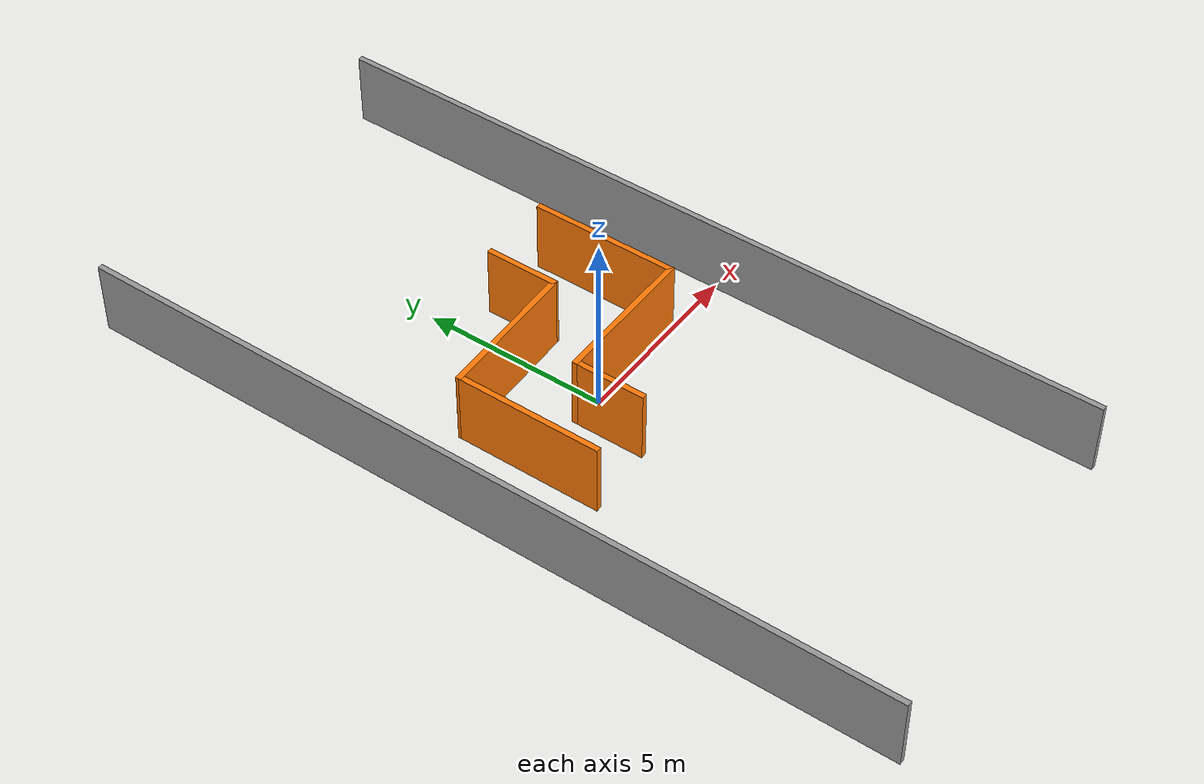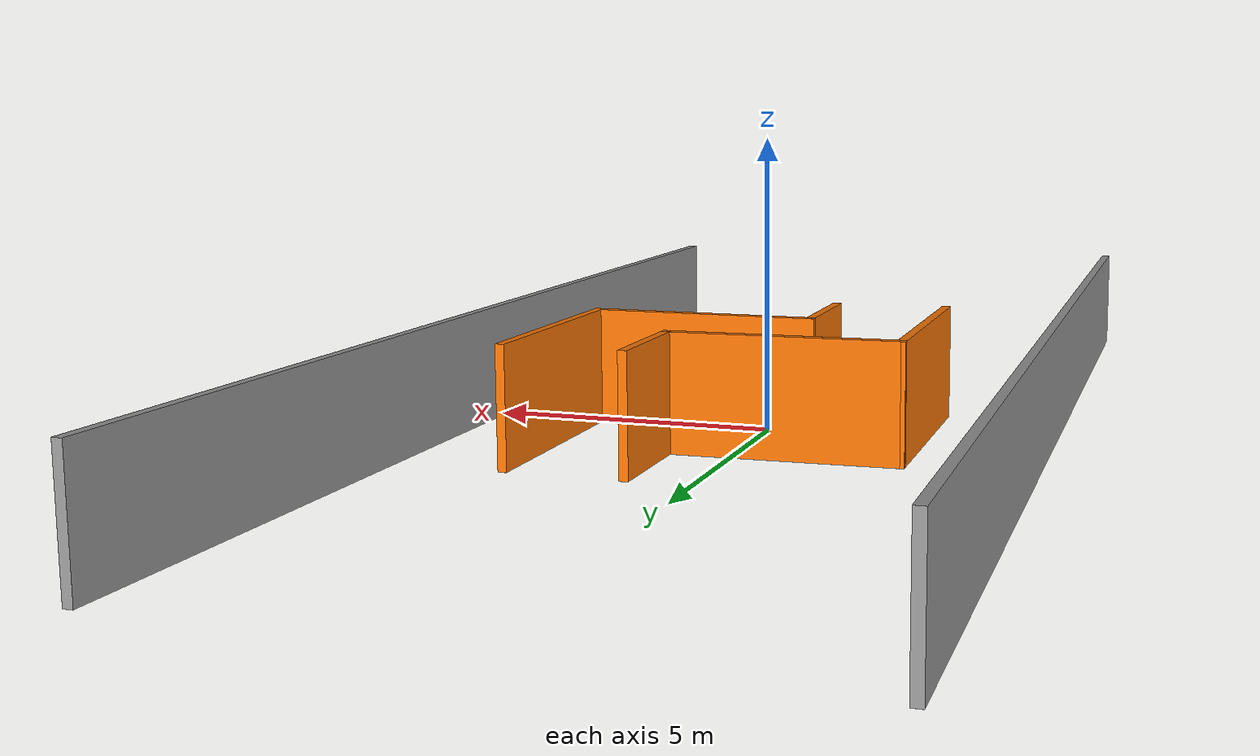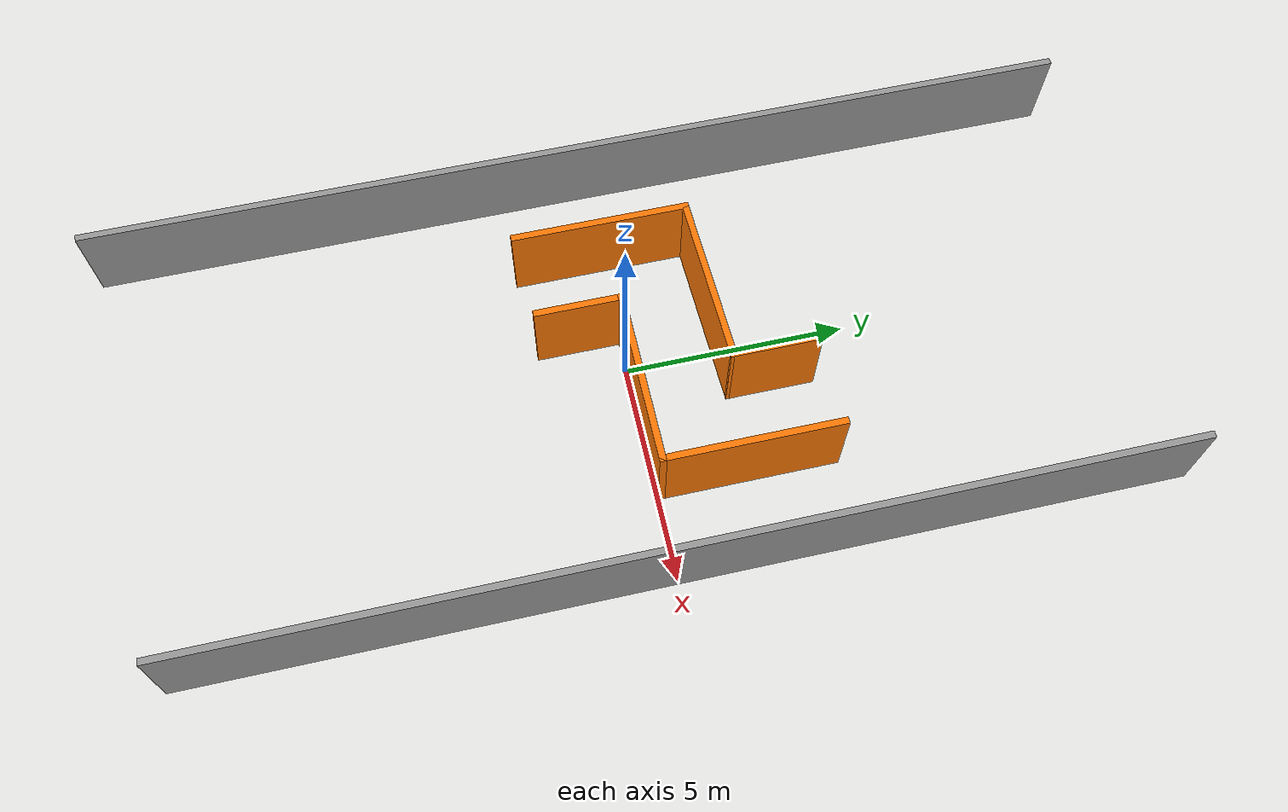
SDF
<?xml version='1.0'?>
<sdf version='1.6'>
  <model name='jy_world_0'>
    <link name='Wall_29'>
      <pose frame=''>-4.806 0 0 0 0 -1.5708</pose>
      <self_collide>0</self_collide>
      <kinematic>0</kinematic>
      <visual name='Wall_29_Visual'>
        <pose frame=''>0 0 1 0 -0 0</pose>
        <geometry>
          <box>
            <size>22.5 0.15 2</size>
          </box>
        </geometry>
        <material>
          <script>
            <uri>file://media/materials/scripts/gazebo.material</uri>
            <name>Gazebo/Grey</name>
          </script>
          <ambient>1 1 1 1</ambient>
          <diffuse>0.7 0.7 0.7 1</diffuse>
          <specular>0.01 0.01 0.01 1</specular>
          <emissive>0 0 0 1</emissive>
        </material>
        <cast_shadows>1</cast_shadows>
        <transparency>0</transparency>
      </visual>
      <collision name='Wall_29_Collision'>
        <laser_retro>0</laser_retro>
        <max_contacts>10</max_contacts>
        <pose frame=''>0 0 1 0 -0 0</pose>
        <geometry>
          <box>
            <size>22.5 0.15 2</size>
          </box>
        </geometry>
        <surface>
          <friction>
            <ode>
              <mu>1</mu>
              <mu2>1</mu2>
              <fdir1>0 0 0</fdir1>
              <slip1>0</slip1>
              <slip2>0</slip2>
            </ode>
            <torsional>
              <coefficient>1</coefficient>
              <patch_radius>0</patch_radius>
              <surface_radius>0</surface_radius>
              <use_patch_radius>1</use_patch_radius>
              <ode>
                <slip>0</slip>
              </ode>
            </torsional>
          </friction>
          <bounce>
            <restitution_coefficient>0</restitution_coefficient>
            <threshold>1e+06</threshold>
          </bounce>
          <contact>
            <collide_without_contact>0</collide_without_contact>
            <collide_without_contact_bitmask>1</collide_without_contact_bitmask>
            <collide_bitmask>1</collide_bitmask>
            <ode>
              <soft_cfm>0</soft_cfm>
              <soft_erp>0.2</soft_erp>
              <kp>1e+13</kp>
              <kd>1</kd>
              <max_vel>0.01</max_vel>
              <min_depth>0</min_depth>
            </ode>
            <bullet>
              <split_impulse>1</split_impulse>
              <split_impulse_penetration_threshold>-0.01</split_impulse_penetration_threshold>
              <soft_cfm>0</soft_cfm>
              <soft_erp>0.2</soft_erp>
              <kp>1e+13</kp>
              <kd>1</kd>
            </bullet>
          </contact>
        </surface>
      </collision>
    </link>
    <link name='Wall_36'>
      <pose frame=''>5 0.322999 0 0 0 -1.5708</pose>
      <self_collide>0</self_collide>
      <kinematic>0</kinematic>
      <gravity>1</gravity>
      <inertial>
        <mass>1</mass>
        <pose frame=''>0 0 0 0 -0 0</pose>
        <inertia>
          <ixx>1</ixx>
          <ixy>0</ixy>
          <ixz>0</ixz>
          <iyy>1</iyy>
          <iyz>0</iyz>
          <izz>1</izz>
        </inertia>
      </inertial>
      <visual name='Wall_36_Visual'>
        <pose frame=''>0 0 1 0 -0 0</pose>
        <geometry>
          <box>
            <size>21.75 0.15 2</size>
          </box>
        </geometry>
        <material>
          <script>
            <uri>file://media/materials/scripts/gazebo.material</uri>
            <name>Gazebo/Grey</name>
          </script>
          <ambient>1 1 1 1</ambient>
          <diffuse>0.7 0.7 0.7 1</diffuse>
          <specular>0.01 0.01 0.01 1</specular>
          <emissive>0 0 0 1</emissive>
          <shader type='vertex'>
            <normal_map>__default__</normal_map>
          </shader>
        </material>
        <cast_shadows>1</cast_shadows>
        <transparency>0</transparency>
      </visual>
      <collision name='Wall_36_Collision'>
        <laser_retro>0</laser_retro>
        <max_contacts>10</max_contacts>
        <pose frame=''>0 0 1 0 -0 0</pose>
        <geometry>
          <box>
            <size>21.75 0.15 2</size>
          </box>
        </geometry>
        <surface>
          <friction>
            <ode>
              <mu>1</mu>
              <mu2>1</mu2>
              <fdir1>0 0 0</fdir1>
              <slip1>0</slip1>
              <slip2>0</slip2>
            </ode>
            <torsional>
              <coefficient>1</coefficient>
              <patch_radius>0</patch_radius>
              <surface_radius>0</surface_radius>
              <use_patch_radius>1</use_patch_radius>
              <ode>
                <slip>0</slip>
              </ode>
            </torsional>
          </friction>
          <bounce>
            <restitution_coefficient>0</restitution_coefficient>
            <threshold>1e+06</threshold>
          </bounce>
          <contact>
            <collide_without_contact>0</collide_without_contact>
            <collide_without_contact_bitmask>1</collide_without_contact_bitmask>
            <collide_bitmask>1</collide_bitmask>
            <ode>
              <soft_cfm>0</soft_cfm>
              <soft_erp>0.2</soft_erp>
              <kp>1e+13</kp>
              <kd>1</kd>
              <max_vel>0.01</max_vel>
              <min_depth>0</min_depth>
            </ode>
            <bullet>
              <split_impulse>1</split_impulse>
              <split_impulse_penetration_threshold>-0.01</split_impulse_penetration_threshold>
              <soft_cfm>0</soft_cfm>
              <soft_erp>0.2</soft_erp>
              <kp>1e+13</kp>
              <kd>1</kd>
            </bullet>
          </contact>
        </surface>
      </collision>
    </link>
    <link name='Wall_47'>
      <pose frame=''>3.076 2.012 0 0 0 -1.5708</pose>
      <self_collide>0</self_collide>
      <kinematic>0</kinematic>
      <visual name='Wall_47_Visual'>
        <pose frame=''>0 0 1 0 -0 0</pose>
        <geometry>
          <box>
            <size>4 0.15 2</size>
          </box>
        </geometry>
        <material>
          <script>
            <uri>file://media/materials/scripts/gazebo.material</uri>
            <name>Gazebo/Grey</name>
          </script>
          <ambient>0.996078 0.47451 0.0196078 1</ambient>
          <diffuse>0.7 0.7 0.7 1</diffuse>
          <specular>0.01 0.01 0.01 1</specular>
          <emissive>0 0 0 1</emissive>
        </material>
        <cast_shadows>1</cast_shadows>
        <transparency>0</transparency>
      </visual>
      <collision name='Wall_47_Collision'>
        <laser_retro>0</laser_retro>
        <max_contacts>10</max_contacts>
        <pose frame=''>0 0 1 0 -0 0</pose>
        <geometry>
          <box>
            <size>4 0.15 2</size>
          </box>
        </geometry>
        <surface>
          <friction>
            <ode>
              <mu>1</mu>
              <mu2>1</mu2>
              <fdir1>0 0 0</fdir1>
              <slip1>0</slip1>
              <slip2>0</slip2>
            </ode>
            <torsional>
              <coefficient>1</coefficient>
              <patch_radius>0</patch_radius>
              <surface_radius>0</surface_radius>
              <use_patch_radius>1</use_patch_radius>
              <ode>
                <slip>0</slip>
              </ode>
            </torsional>
          </friction>
          <bounce>
            <restitution_coefficient>0</restitution_coefficient>
            <threshold>1e+06</threshold>
          </bounce>
          <contact>
            <collide_without_contact>0</collide_without_contact>
            <collide_without_contact_bitmask>1</collide_without_contact_bitmask>
            <collide_bitmask>1</collide_bitmask>
            <ode>
              <soft_cfm>0</soft_cfm>
              <soft_erp>0.2</soft_erp>
              <kp>1e+13</kp>
              <kd>1</kd>
              <max_vel>0.01</max_vel>
              <min_depth>0</min_depth>
            </ode>
            <bullet>
              <split_impulse>1</split_impulse>
              <split_impulse_penetration_threshold>-0.01</split_impulse_penetration_threshold>
              <soft_cfm>0</soft_cfm>
              <soft_erp>0.2</soft_erp>
              <kp>1e+13</kp>
              <kd>1</kd>
            </bullet>
          </contact>
        </surface>
      </collision>
    </link>
    <link name='Wall_51'>
      <pose frame=''>1.076 3.012 0 0 0 -1.5708</pose>
      <self_collide>0</self_collide>
      <kinematic>0</kinematic>
      <visual name='Wall_51_Visual'>
        <pose frame=''>0 0 1 0 -0 0</pose>
        <geometry>
          <box>
            <size>2 0.15 2</size>
          </box>
        </geometry>
        <material>
          <script>
            <uri>file://media/materials/scripts/gazebo.material</uri>
            <name>Gazebo/Grey</name>
          </script>
          <ambient>0.996078 0.47451 0.0196078 1</ambient>
          <diffuse>0.7 0.7 0.7 1</diffuse>
          <specular>0.01 0.01 0.01 1</specular>
          <emissive>0 0 0 1</emissive>
        </material>
        <cast_shadows>1</cast_shadows>
        <transparency>0</transparency>
      </visual>
      <collision name='Wall_51_Collision'>
        <laser_retro>0</laser_retro>
        <max_contacts>10</max_contacts>
        <pose frame=''>0 0 1 0 -0 0</pose>
        <geometry>
          <box>
            <size>2 0.15 2</size>
          </box>
        </geometry>
        <surface>
          <friction>
            <ode>
              <mu>1</mu>
              <mu2>1</mu2>
              <fdir1>0 0 0</fdir1>
              <slip1>0</slip1>
              <slip2>0</slip2>
            </ode>
            <torsional>
              <coefficient>1</coefficient>
              <patch_radius>0</patch_radius>
              <surface_radius>0</surface_radius>
              <use_patch_radius>1</use_patch_radius>
              <ode>
                <slip>0</slip>
              </ode>
            </torsional>
          </friction>
          <bounce>
            <restitution_coefficient>0</restitution_coefficient>
            <threshold>1e+06</threshold>
          </bounce>
          <contact>
            <collide_without_contact>0</collide_without_contact>
            <collide_without_contact_bitmask>1</collide_without_contact_bitmask>
            <collide_bitmask>1</collide_bitmask>
            <ode>
              <soft_cfm>0</soft_cfm>
              <soft_erp>0.2</soft_erp>
              <kp>1e+13</kp>
              <kd>1</kd>
              <max_vel>0.01</max_vel>
              <min_depth>0</min_depth>
            </ode>
            <bullet>
              <split_impulse>1</split_impulse>
              <split_impulse_penetration_threshold>-0.01</split_impulse_penetration_threshold>
              <soft_cfm>0</soft_cfm>
              <soft_erp>0.2</soft_erp>
              <kp>1e+13</kp>
              <kd>1</kd>
            </bullet>
          </contact>
        </surface>
      </collision>
    </link>
    <link name='Wall_53'>
      <pose frame=''>-0.829 2.0265 0 0 0 -3.10984</pose>
      <self_collide>0</self_collide>
      <kinematic>0</kinematic>
      <visual name='Wall_53_Visual'>
        <pose frame=''>0 0 1 0 -0 0</pose>
        <geometry>
          <box>
            <size>3.96192 0.15 2</size>
          </box>
        </geometry>
        <material>
          <script>
            <uri>file://media/materials/scripts/gazebo.material</uri>
            <name>Gazebo/Grey</name>
          </script>
          <ambient>0.996078 0.47451 0.0196078 1</ambient>
          <diffuse>0.7 0.7 0.7 1</diffuse>
          <specular>0.01 0.01 0.01 1</specular>
          <emissive>0 0 0 1</emissive>
        </material>
        <cast_shadows>1</cast_shadows>
        <transparency>0</transparency>
      </visual>
      <collision name='Wall_53_Collision'>
        <laser_retro>0</laser_retro>
        <max_contacts>10</max_contacts>
        <pose frame=''>0 0 1 0 -0 0</pose>
        <geometry>
          <box>
            <size>3.96192 0.15 2</size>
          </box>
        </geometry>
        <surface>
          <friction>
            <ode>
              <mu>1</mu>
              <mu2>1</mu2>
              <fdir1>0 0 0</fdir1>
              <slip1>0</slip1>
              <slip2>0</slip2>
            </ode>
            <torsional>
              <coefficient>1</coefficient>
              <patch_radius>0</patch_radius>
              <surface_radius>0</surface_radius>
              <use_patch_radius>1</use_patch_radius>
              <ode>
                <slip>0</slip>
              </ode>
            </torsional>
          </friction>
          <bounce>
            <restitution_coefficient>0</restitution_coefficient>
            <threshold>1e+06</threshold>
          </bounce>
          <contact>
            <collide_without_contact>0</collide_without_contact>
            <collide_without_contact_bitmask>1</collide_without_contact_bitmask>
            <collide_bitmask>1</collide_bitmask>
            <ode>
              <soft_cfm>0</soft_cfm>
              <soft_erp>0.2</soft_erp>
              <kp>1e+13</kp>
              <kd>1</kd>
              <max_vel>0.01</max_vel>
              <min_depth>0</min_depth>
            </ode>
            <bullet>
              <split_impulse>1</split_impulse>
              <split_impulse_penetration_threshold>-0.01</split_impulse_penetration_threshold>
              <soft_cfm>0</soft_cfm>
              <soft_erp>0.2</soft_erp>
              <kp>1e+13</kp>
              <kd>1</kd>
            </bullet>
          </contact>
        </surface>
      </collision>
    </link>
    <link name='Wall_55'>
      <pose frame=''>1.151 0.086999 0 0 -0 3.14159</pose>
      <self_collide>0</self_collide>
      <kinematic>0</kinematic>
      <visual name='Wall_55_Visual'>
        <pose frame=''>0 0 1 0 -0 0</pose>
        <geometry>
          <box>
            <size>4 0.15 2</size>
          </box>
        </geometry>
        <material>
          <script>
            <uri>file://media/materials/scripts/gazebo.material</uri>
            <name>Gazebo/Grey</name>
          </script>
          <ambient>0.996078 0.47451 0.0196078 1</ambient>
          <diffuse>0.7 0.7 0.7 1</diffuse>
          <specular>0.01 0.01 0.01 1</specular>
          <emissive>0 0 0 1</emissive>
        </material>
        <cast_shadows>1</cast_shadows>
        <transparency>0</transparency>
      </visual>
      <collision name='Wall_55_Collision'>
        <laser_retro>0</laser_retro>
        <max_contacts>10</max_contacts>
        <pose frame=''>0 0 1 0 -0 0</pose>
        <geometry>
          <box>
            <size>4 0.15 2</size>
          </box>
        </geometry>
        <surface>
          <friction>
            <ode>
              <mu>1</mu>
              <mu2>1</mu2>
              <fdir1>0 0 0</fdir1>
              <slip1>0</slip1>
              <slip2>0</slip2>
            </ode>
            <torsional>
              <coefficient>1</coefficient>
              <patch_radius>0</patch_radius>
              <surface_radius>0</surface_radius>
              <use_patch_radius>1</use_patch_radius>
              <ode>
                <slip>0</slip>
              </ode>
            </torsional>
          </friction>
          <bounce>
            <restitution_coefficient>0</restitution_coefficient>
            <threshold>1e+06</threshold>
          </bounce>
          <contact>
            <collide_without_contact>0</collide_without_contact>
            <collide_without_contact_bitmask>1</collide_without_contact_bitmask>
            <collide_bitmask>1</collide_bitmask>
            <ode>
              <soft_cfm>0</soft_cfm>
              <soft_erp>0.2</soft_erp>
              <kp>1e+13</kp>
              <kd>1</kd>
              <max_vel>0.01</max_vel>
              <min_depth>0</min_depth>
            </ode>
            <bullet>
              <split_impulse>1</split_impulse>
              <split_impulse_penetration_threshold>-0.01</split_impulse_penetration_threshold>
              <soft_cfm>0</soft_cfm>
              <soft_erp>0.2</soft_erp>
              <kp>1e+13</kp>
              <kd>1</kd>
            </bullet>
          </contact>
        </surface>
      </collision>
    </link>
    <link name='Wall_57'>
      <pose frame=''>-0.774 -0.838001 0 0 0 -1.5708</pose>
      <self_collide>0</self_collide>
      <kinematic>0</kinematic>
      <visual name='Wall_57_Visual'>
        <pose frame=''>0 0 1 0 -0 0</pose>
        <geometry>
          <box>
            <size>2 0.15 2</size>
          </box>
        </geometry>
        <material>
          <script>
            <uri>file://media/materials/scripts/gazebo.material</uri>
            <name>Gazebo/Grey</name>
          </script>
          <ambient>0.996078 0.47451 0.0196078 1</ambient>
          <diffuse>0.7 0.7 0.7 1</diffuse>
          <specular>0.01 0.01 0.01 1</specular>
          <emissive>0 0 0 1</emissive>
        </material>
        <cast_shadows>1</cast_shadows>
        <transparency>0</transparency>
      </visual>
      <collision name='Wall_57_Collision'>
        <laser_retro>0</laser_retro>
        <max_contacts>10</max_contacts>
        <pose frame=''>0 0 1 0 -0 0</pose>
        <geometry>
          <box>
            <size>2 0.15 2</size>
          </box>
        </geometry>
        <surface>
          <friction>
            <ode>
              <mu>1</mu>
              <mu2>1</mu2>
              <fdir1>0 0 0</fdir1>
              <slip1>0</slip1>
              <slip2>0</slip2>
            </ode>
            <torsional>
              <coefficient>1</coefficient>
              <patch_radius>0</patch_radius>
              <surface_radius>0</surface_radius>
              <use_patch_radius>1</use_patch_radius>
              <ode>
                <slip>0</slip>
              </ode>
            </torsional>
          </friction>
          <bounce>
            <restitution_coefficient>0</restitution_coefficient>
            <threshold>1e+06</threshold>
          </bounce>
          <contact>
            <collide_without_contact>0</collide_without_contact>
            <collide_without_contact_bitmask>1</collide_without_contact_bitmask>
            <collide_bitmask>1</collide_bitmask>
            <ode>
              <soft_cfm>0</soft_cfm>
              <soft_erp>0.2</soft_erp>
              <kp>1e+13</kp>
              <kd>1</kd>
              <max_vel>0.01</max_vel>
              <min_depth>0</min_depth>
            </ode>
            <bullet>
              <split_impulse>1</split_impulse>
              <split_impulse_penetration_threshold>-0.01</split_impulse_penetration_threshold>
              <soft_cfm>0</soft_cfm>
              <soft_erp>0.2</soft_erp>
              <kp>1e+13</kp>
              <kd>1</kd>
            </bullet>
          </contact>
        </surface>
      </collision>
    </link>
    <link name='Wall_59'>
      <pose frame=''>-2.734 0.041 0 0 0 -1.5708</pose>
      <self_collide>0</self_collide>
      <kinematic>0</kinematic>
      <visual name='Wall_59_Visual'>
        <pose frame=''>0 0 1 0 -0 0</pose>
        <geometry>
          <box>
            <size>4 0.15 2</size>
          </box>
        </geometry>
        <material>
          <script>
            <uri>file://media/materials/scripts/gazebo.material</uri>
            <name>Gazebo/Grey</name>
          </script>
          <ambient>0.996078 0.47451 0.0196078 1</ambient>
          <diffuse>0.7 0.7 0.7 1</diffuse>
          <specular>0.01 0.01 0.01 1</specular>
          <emissive>0 0 0 1</emissive>
        </material>
        <cast_shadows>1</cast_shadows>
        <transparency>0</transparency>
      </visual>
      <collision name='Wall_59_Collision'>
        <laser_retro>0</laser_retro>
        <max_contacts>10</max_contacts>
        <pose frame=''>0 0 1 0 -0 0</pose>
        <geometry>
          <box>
            <size>4 0.15 2</size>
          </box>
        </geometry>
        <surface>
          <friction>
            <ode>
              <mu>1</mu>
              <mu2>1</mu2>
              <fdir1>0 0 0</fdir1>
              <slip1>0</slip1>
              <slip2>0</slip2>
            </ode>
            <torsional>
              <coefficient>1</coefficient>
              <patch_radius>0</patch_radius>
              <surface_radius>0</surface_radius>
              <use_patch_radius>1</use_patch_radius>
              <ode>
                <slip>0</slip>
              </ode>
            </torsional>
          </friction>
          <bounce>
            <restitution_coefficient>0</restitution_coefficient>
            <threshold>1e+06</threshold>
          </bounce>
          <contact>
            <collide_without_contact>0</collide_without_contact>
            <collide_without_contact_bitmask>1</collide_without_contact_bitmask>
            <collide_bitmask>1</collide_bitmask>
            <ode>
              <soft_cfm>0</soft_cfm>
              <soft_erp>0.2</soft_erp>
              <kp>1e+13</kp>
              <kd>1</kd>
              <max_vel>0.01</max_vel>
              <min_depth>0</min_depth>
            </ode>
            <bullet>
              <split_impulse>1</split_impulse>
              <split_impulse_penetration_threshold>-0.01</split_impulse_penetration_threshold>
              <soft_cfm>0</soft_cfm>
              <soft_erp>0.2</soft_erp>
              <kp>1e+13</kp>
              <kd>1</kd>
            </bullet>
          </contact>
        </surface>
      </collision>
    </link>
    <static>1</static>
    <allow_auto_disable>1</allow_auto_disable>
  </model>
</sdf>
